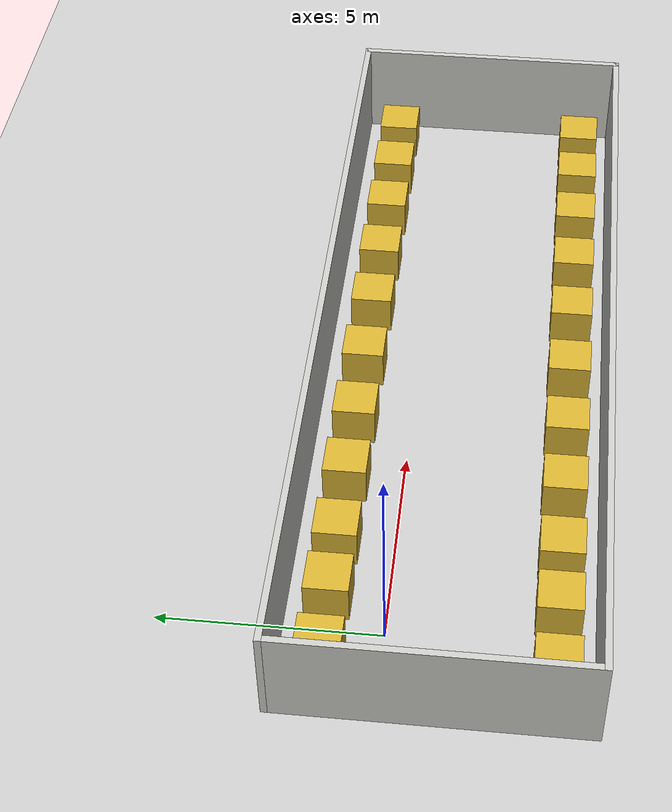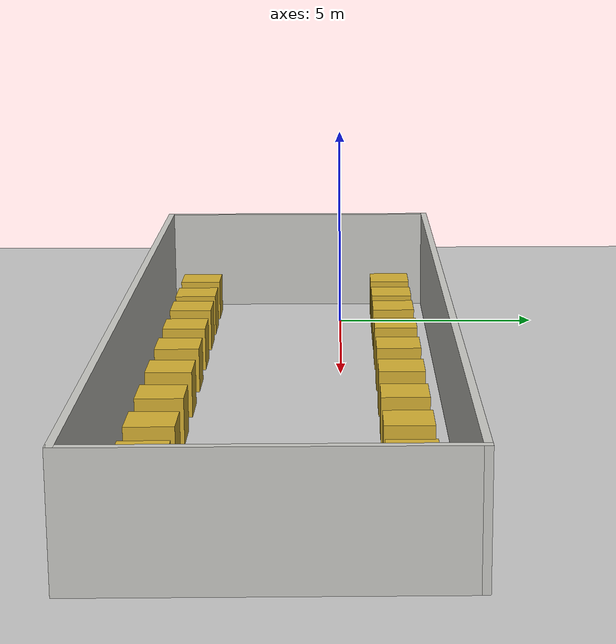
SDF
<sdf version="1.6">
 <world name="default">
  <light name="sun" type="directional">
   <pose>0 0 15 0 -0 0</pose>
   <diffuse>0.8 0.8 0.8 1</diffuse>
   <specular>0.2 0.2 0.2 1</specular>
   <attenuation>
    <range>1000</range>
    <constant>0.9</constant>
    <linear>0.01</linear>
    <quadratic>0.001</quadratic>
   </attenuation>
   <direction>-0.5 0.1 -0.9</direction>
  </light>
  <model name="ground_plane">
   <static>1</static>
   <link name="link">
    <collision name="collision">
     <geometry><plane><normal>0 0 1</normal><size>100 100</size></plane></geometry>
     <surface><friction><ode><mu>100</mu><mu2>50</mu2></ode></friction></surface>
    </collision>
    <visual name="visual">
     <cast_shadows>0</cast_shadows>
     <geometry><plane><normal>0 0 1</normal><size>100 100</size></plane></geometry>
     <material>
      <script><uri>file://media/materials/scripts/gazebo.material</uri><name>Gazebo/Grey</name></script>
     </material>
    </visual>
   </link>
  </model>
  <gravity>0 0 -9.8</gravity>
  <magnetic_field>6e-06 2.3e-05 -4.2e-05</magnetic_field>
  <atmosphere type="adiabatic"/>
  <physics name="default_physics" default="0" type="ode">
   <max_step_size>0.001</max_step_size>
   <real_time_factor>1</real_time_factor>
   <real_time_update_rate>1000</real_time_update_rate>
  </physics>
  <scene><ambient>0.4 0.4 0.4 1</ambient><background>0.7 0.7 0.7 1</background><shadows>1</shadows></scene>
  <audio><device>default</device></audio>
  <spherical_coordinates>
   <surface_model>EARTH_WGS84</surface_model>
   <latitude_deg>0</latitude_deg>
   <longitude_deg>0</longitude_deg>
   <elevation>0</elevation>
   <heading_deg>0</heading_deg>
  </spherical_coordinates>
  <model name="field_2">
   <link name="Wall_2">
    <pose>0 -3.425 0 0 -0 0</pose>
    <visual name="Wall_2_Visual">
     <pose>0 0 1.25 0 -0 0</pose>
     <geometry><box><size>20 0.15 2.5</size></box></geometry>
     <material>
      <script><uri>file://media/materials/scripts/gazebo.material</uri><name>Gazebo/CeilingTiled</name></script>
      <ambient>0.435294 0.796078 0.67451 1</ambient>
     </material>
     <meta><layer>0</layer></meta>
    </visual>
    <collision name="Wall_2_Collision">
     <pose>0 0 1.25 0 -0 0</pose>
     <geometry><box><size>20 0.15 2.5</size></box></geometry>
     <surface>
      <friction>
       <ode><mu>1</mu><mu2>1</mu2><fdir1>0 0 0</fdir1><slip1>0</slip1><slip2>0</slip2></ode>
       <torsional>
        <coefficient>1</coefficient>
        <patch_radius>0</patch_radius>
        <surface_radius>0</surface_radius>
        <use_patch_radius>1</use_patch_radius>
        <ode><slip>0</slip></ode>
       </torsional>
      </friction>
      <bounce><restitution_coefficient>0</restitution_coefficient><threshold>1e+06</threshold></bounce>
      <contact>
       <collide_without_contact>0</collide_without_contact>
       <collide_without_contact_bitmask>1</collide_without_contact_bitmask>
       <collide_bitmask>1</collide_bitmask>
       <ode>
        <soft_cfm>0</soft_cfm>
        <soft_erp>0.2</soft_erp>
        <kp>1e+13</kp>
        <kd>1</kd>
        <max_vel>0.01</max_vel>
        <min_depth>0</min_depth>
       </ode>
       <bullet>
        <split_impulse>1</split_impulse>
        <split_impulse_penetration_threshold>-0.01</split_impulse_penetration_threshold>
        <soft_cfm>0</soft_cfm>
        <soft_erp>0.2</soft_erp>
        <kp>1e+13</kp>
        <kd>1</kd>
       </bullet>
      </contact>
     </surface>
    </collision>
   </link>
   <link name="Wall_4">
    <pose>9.925 0 0 0 -0 1.5708</pose>
    <visual name="Wall_4_Visual">
     <pose>0 0 1.25 0 -0 0</pose>
     <geometry><box><size>7 0.15 2.5</size></box></geometry>
     <material>
      <script><uri>file://media/materials/scripts/gazebo.material</uri><name>Gazebo/CeilingTiled</name></script>
      <ambient>0.435294 0.796078 0.67451 1</ambient>
     </material>
     <meta><layer>0</layer></meta>
    </visual>
    <collision name="Wall_4_Collision">
     <pose>0 0 1.25 0 -0 0</pose>
     <geometry><box><size>7 0.15 2.5</size></box></geometry>
     <surface>
      <friction>
       <ode><mu>1</mu><mu2>1</mu2><fdir1>0 0 0</fdir1><slip1>0</slip1><slip2>0</slip2></ode>
       <torsional>
        <coefficient>1</coefficient>
        <patch_radius>0</patch_radius>
        <surface_radius>0</surface_radius>
        <use_patch_radius>1</use_patch_radius>
        <ode><slip>0</slip></ode>
       </torsional>
      </friction>
      <bounce><restitution_coefficient>0</restitution_coefficient><threshold>1e+06</threshold></bounce>
      <contact>
       <collide_without_contact>0</collide_without_contact>
       <collide_without_contact_bitmask>1</collide_without_contact_bitmask>
       <collide_bitmask>1</collide_bitmask>
       <ode>
        <soft_cfm>0</soft_cfm>
        <soft_erp>0.2</soft_erp>
        <kp>1e+13</kp>
        <kd>1</kd>
        <max_vel>0.01</max_vel>
        <min_depth>0</min_depth>
       </ode>
       <bullet>
        <split_impulse>1</split_impulse>
        <split_impulse_penetration_threshold>-0.01</split_impulse_penetration_threshold>
        <soft_cfm>0</soft_cfm>
        <soft_erp>0.2</soft_erp>
        <kp>1e+13</kp>
        <kd>1</kd>
       </bullet>
      </contact>
     </surface>
    </collision>
   </link>
   <link name="Wall_6">
    <pose>0 3.425 0 0 -0 3.14159</pose>
    <visual name="Wall_6_Visual">
     <pose>0 0 1.25 0 -0 0</pose>
     <geometry><box><size>20 0.15 2.5</size></box></geometry>
     <material>
      <script><uri>file://media/materials/scripts/gazebo.material</uri><name>Gazebo/CeilingTiled</name></script>
      <ambient>0.435294 0.796078 0.67451 1</ambient>
     </material>
     <meta><layer>0</layer></meta>
    </visual>
    <collision name="Wall_6_Collision">
     <pose>0 0 1.25 0 -0 0</pose>
     <geometry><box><size>20 0.15 2.5</size></box></geometry>
     <surface>
      <friction>
       <ode><mu>1</mu><mu2>1</mu2><fdir1>0 0 0</fdir1><slip1>0</slip1><slip2>0</slip2></ode>
       <torsional>
        <coefficient>1</coefficient>
        <patch_radius>0</patch_radius>
        <surface_radius>0</surface_radius>
        <use_patch_radius>1</use_patch_radius>
        <ode><slip>0</slip></ode>
       </torsional>
      </friction>
      <bounce><restitution_coefficient>0</restitution_coefficient><threshold>1e+06</threshold></bounce>
      <contact>
       <collide_without_contact>0</collide_without_contact>
       <collide_without_contact_bitmask>1</collide_without_contact_bitmask>
       <collide_bitmask>1</collide_bitmask>
       <ode>
        <soft_cfm>0</soft_cfm>
        <soft_erp>0.2</soft_erp>
        <kp>1e+13</kp>
        <kd>1</kd>
        <max_vel>0.01</max_vel>
        <min_depth>0</min_depth>
       </ode>
       <bullet>
        <split_impulse>1</split_impulse>
        <split_impulse_penetration_threshold>-0.01</split_impulse_penetration_threshold>
        <soft_cfm>0</soft_cfm>
        <soft_erp>0.2</soft_erp>
        <kp>1e+13</kp>
        <kd>1</kd>
       </bullet>
      </contact>
     </surface>
    </collision>
   </link>
   <link name="Wall_7">
    <pose>-9.925 0 0 0 0 -1.5708</pose>
    <visual name="Wall_7_Visual">
     <pose>0 0 1.25 0 -0 0</pose>
     <geometry><box><size>7 0.15 2.5</size></box></geometry>
     <material>
      <script><uri>file://media/materials/scripts/gazebo.material</uri><name>Gazebo/CeilingTiled</name></script>
      <ambient>0.435294 0.796078 0.67451 1</ambient>
     </material>
     <meta><layer>0</layer></meta>
    </visual>
    <collision name="Wall_7_Collision">
     <pose>0 0 1.25 0 -0 0</pose>
     <geometry><box><size>7 0.15 2.5</size></box></geometry>
     <surface>
      <friction>
       <ode><mu>1</mu><mu2>1</mu2><fdir1>0 0 0</fdir1><slip1>0</slip1><slip2>0</slip2></ode>
       <torsional>
        <coefficient>1</coefficient>
        <patch_radius>0</patch_radius>
        <surface_radius>0</surface_radius>
        <use_patch_radius>1</use_patch_radius>
        <ode><slip>0</slip></ode>
       </torsional>
      </friction>
      <bounce><restitution_coefficient>0</restitution_coefficient><threshold>1e+06</threshold></bounce>
      <contact>
       <collide_without_contact>0</collide_without_contact>
       <collide_without_contact_bitmask>1</collide_without_contact_bitmask>
       <collide_bitmask>1</collide_bitmask>
       <ode>
        <soft_cfm>0</soft_cfm>
        <soft_erp>0.2</soft_erp>
        <kp>1e+13</kp>
        <kd>1</kd>
        <max_vel>0.01</max_vel>
        <min_depth>0</min_depth>
       </ode>
       <bullet>
        <split_impulse>1</split_impulse>
        <split_impulse_penetration_threshold>-0.01</split_impulse_penetration_threshold>
        <soft_cfm>0</soft_cfm>
        <soft_erp>0.2</soft_erp>
        <kp>1e+13</kp>
        <kd>1</kd>
       </bullet>
      </contact>
     </surface>
    </collision>
   </link>
   <link name="link_0">
    <inertial>
     <mass>1</mass>
     <inertia>
      <ixx>0.166667</ixx>
      <ixy>0</ixy>
      <ixz>0</ixz>
      <iyy>0.166667</iyy>
      <iyz>0</iyz>
      <izz>0.166667</izz>
     </inertia>
    </inertial>
    <pose>-8.65517 -2.53983 0.5 0 -0 0</pose>
    <visual name="visual">
     <geometry><box><size>1 1 1</size></box></geometry>
     <material>
      <lighting>1</lighting>
      <script><uri>file://media/materials/scripts/gazebo.material</uri><name>Gazebo/Gold</name></script>
      <shader type="vertex"><normal_map>__default__</normal_map></shader>
      <ambient>0.2 0.7 0.2 1</ambient>
      <diffuse>0.7 0.7 0.7 1</diffuse>
      <specular>0.01 0.01 0.01 1</specular>
      <emissive>0 0 0 1</emissive>
     </material>
    </visual>
    <collision name="collision">
     <geometry><box><size>1 1 1</size></box></geometry>
     <surface>
      <friction>
       <ode><mu>1</mu><mu2>1</mu2><fdir1>0 0 0</fdir1><slip1>0</slip1><slip2>0</slip2></ode>
       <torsional>
        <coefficient>1</coefficient>
        <patch_radius>0</patch_radius>
        <surface_radius>0</surface_radius>
        <use_patch_radius>1</use_patch_radius>
        <ode><slip>0</slip></ode>
       </torsional>
      </friction>
      <bounce><restitution_coefficient>0</restitution_coefficient><threshold>1e+06</threshold></bounce>
      <contact>
       <collide_without_contact>0</collide_without_contact>
       <collide_without_contact_bitmask>1</collide_without_contact_bitmask>
       <collide_bitmask>1</collide_bitmask>
       <ode>
        <soft_cfm>0</soft_cfm>
        <soft_erp>0.2</soft_erp>
        <kp>1e+13</kp>
        <kd>1</kd>
        <max_vel>0.01</max_vel>
        <min_depth>0</min_depth>
       </ode>
       <bullet>
        <split_impulse>1</split_impulse>
        <split_impulse_penetration_threshold>-0.01</split_impulse_penetration_threshold>
        <soft_cfm>0</soft_cfm>
        <soft_erp>0.2</soft_erp>
        <kp>1e+13</kp>
        <kd>1</kd>
       </bullet>
      </contact>
     </surface>
    </collision>
   </link>
   <link name="link_0_clone">
    <inertial>
     <mass>1</mass>
     <inertia>
      <ixx>0.166667</ixx>
      <ixy>0</ixy>
      <ixz>0</ixz>
      <iyy>0.166667</iyy>
      <iyz>0</iyz>
      <izz>0.166667</izz>
     </inertia>
    </inertial>
    <pose>-7.02211 -2.53809 0.5 0 -0 0</pose>
    <visual name="visual">
     <geometry><box><size>1 1 1</size></box></geometry>
     <material>
      <lighting>1</lighting>
      <script><uri>file://media/materials/scripts/gazebo.material</uri><name>Gazebo/Gold</name></script>
      <shader type="vertex"><normal_map>__default__</normal_map></shader>
      <ambient>0.2 0.7 0.2 1</ambient>
      <diffuse>0.7 0.7 0.7 1</diffuse>
      <specular>0.01 0.01 0.01 1</specular>
      <emissive>0 0 0 1</emissive>
     </material>
    </visual>
    <collision name="collision">
     <geometry><box><size>1 1 1</size></box></geometry>
     <surface>
      <friction>
       <ode><mu>1</mu><mu2>1</mu2><fdir1>0 0 0</fdir1><slip1>0</slip1><slip2>0</slip2></ode>
       <torsional>
        <coefficient>1</coefficient>
        <patch_radius>0</patch_radius>
        <surface_radius>0</surface_radius>
        <use_patch_radius>1</use_patch_radius>
        <ode><slip>0</slip></ode>
       </torsional>
      </friction>
      <bounce><restitution_coefficient>0</restitution_coefficient><threshold>1e+06</threshold></bounce>
      <contact>
       <collide_without_contact>0</collide_without_contact>
       <collide_without_contact_bitmask>1</collide_without_contact_bitmask>
       <collide_bitmask>1</collide_bitmask>
       <ode>
        <soft_cfm>0</soft_cfm>
        <soft_erp>0.2</soft_erp>
        <kp>1e+13</kp>
        <kd>1</kd>
        <max_vel>0.01</max_vel>
        <min_depth>0</min_depth>
       </ode>
       <bullet>
        <split_impulse>1</split_impulse>
        <split_impulse_penetration_threshold>-0.01</split_impulse_penetration_threshold>
        <soft_cfm>0</soft_cfm>
        <soft_erp>0.2</soft_erp>
        <kp>1e+13</kp>
        <kd>1</kd>
       </bullet>
      </contact>
     </surface>
    </collision>
   </link>
   <link name="link_0_clone_0">
    <inertial>
     <mass>1</mass>
     <inertia>
      <ixx>0.166667</ixx>
      <ixy>0</ixy>
      <ixz>0</ixz>
      <iyy>0.166667</iyy>
      <iyz>0</iyz>
      <izz>0.166667</izz>
     </inertia>
    </inertial>
    <pose>-5.52194 -2.53983 0.5 0 -0 0</pose>
    <visual name="visual">
     <geometry><box><size>1 1 1</size></box></geometry>
     <material>
      <lighting>1</lighting>
      <script><uri>file://media/materials/scripts/gazebo.material</uri><name>Gazebo/Gold</name></script>
      <shader type="vertex"><normal_map>__default__</normal_map></shader>
      <ambient>0.2 0.7 0.2 1</ambient>
      <diffuse>0.7 0.7 0.7 1</diffuse>
      <specular>0.01 0.01 0.01 1</specular>
      <emissive>0 0 0 1</emissive>
     </material>
    </visual>
    <collision name="collision">
     <geometry><box><size>1 1 1</size></box></geometry>
     <surface>
      <friction>
       <ode><mu>1</mu><mu2>1</mu2><fdir1>0 0 0</fdir1><slip1>0</slip1><slip2>0</slip2></ode>
       <torsional>
        <coefficient>1</coefficient>
        <patch_radius>0</patch_radius>
        <surface_radius>0</surface_radius>
        <use_patch_radius>1</use_patch_radius>
        <ode><slip>0</slip></ode>
       </torsional>
      </friction>
      <bounce><restitution_coefficient>0</restitution_coefficient><threshold>1e+06</threshold></bounce>
      <contact>
       <collide_without_contact>0</collide_without_contact>
       <collide_without_contact_bitmask>1</collide_without_contact_bitmask>
       <collide_bitmask>1</collide_bitmask>
       <ode>
        <soft_cfm>0</soft_cfm>
        <soft_erp>0.2</soft_erp>
        <kp>1e+13</kp>
        <kd>1</kd>
        <max_vel>0.01</max_vel>
        <min_depth>0</min_depth>
       </ode>
       <bullet>
        <split_impulse>1</split_impulse>
        <split_impulse_penetration_threshold>-0.01</split_impulse_penetration_threshold>
        <soft_cfm>0</soft_cfm>
        <soft_erp>0.2</soft_erp>
        <kp>1e+13</kp>
        <kd>1</kd>
       </bullet>
      </contact>
     </surface>
    </collision>
   </link>
   <link name="link_0_clone_1">
    <inertial>
     <mass>1</mass>
     <inertia>
      <ixx>0.166667</ixx>
      <ixy>0</ixy>
      <ixz>0</ixz>
      <iyy>0.166667</iyy>
      <iyz>0</iyz>
      <izz>0.166667</izz>
     </inertia>
    </inertial>
    <pose>-3.7131 -2.53983 0.5 0 -0 0</pose>
    <visual name="visual">
     <geometry><box><size>1 1 1</size></box></geometry>
     <material>
      <lighting>1</lighting>
      <script><uri>file://media/materials/scripts/gazebo.material</uri><name>Gazebo/Gold</name></script>
      <shader type="vertex"><normal_map>__default__</normal_map></shader>
      <ambient>0.2 0.7 0.2 1</ambient>
      <diffuse>0.7 0.7 0.7 1</diffuse>
      <specular>0.01 0.01 0.01 1</specular>
      <emissive>0 0 0 1</emissive>
     </material>
    </visual>
    <collision name="collision">
     <geometry><box><size>1 1 1</size></box></geometry>
     <surface>
      <friction>
       <ode><mu>1</mu><mu2>1</mu2><fdir1>0 0 0</fdir1><slip1>0</slip1><slip2>0</slip2></ode>
       <torsional>
        <coefficient>1</coefficient>
        <patch_radius>0</patch_radius>
        <surface_radius>0</surface_radius>
        <use_patch_radius>1</use_patch_radius>
        <ode><slip>0</slip></ode>
       </torsional>
      </friction>
      <bounce><restitution_coefficient>0</restitution_coefficient><threshold>1e+06</threshold></bounce>
      <contact>
       <collide_without_contact>0</collide_without_contact>
       <collide_without_contact_bitmask>1</collide_without_contact_bitmask>
       <collide_bitmask>1</collide_bitmask>
       <ode>
        <soft_cfm>0</soft_cfm>
        <soft_erp>0.2</soft_erp>
        <kp>1e+13</kp>
        <kd>1</kd>
        <max_vel>0.01</max_vel>
        <min_depth>0</min_depth>
       </ode>
       <bullet>
        <split_impulse>1</split_impulse>
        <split_impulse_penetration_threshold>-0.01</split_impulse_penetration_threshold>
        <soft_cfm>0</soft_cfm>
        <soft_erp>0.2</soft_erp>
        <kp>1e+13</kp>
        <kd>1</kd>
       </bullet>
      </contact>
     </surface>
    </collision>
   </link>
   <link name="link_0_clone_2">
    <inertial>
     <mass>1</mass>
     <inertia>
      <ixx>0.166667</ixx>
      <ixy>0</ixy>
      <ixz>0</ixz>
      <iyy>0.166667</iyy>
      <iyz>0</iyz>
      <izz>0.166667</izz>
     </inertia>
    </inertial>
    <pose>-1.89482 -2.53983 0.5 0 -0 0</pose>
    <visual name="visual">
     <geometry><box><size>1 1 1</size></box></geometry>
     <material>
      <lighting>1</lighting>
      <script><uri>file://media/materials/scripts/gazebo.material</uri><name>Gazebo/Gold</name></script>
      <shader type="vertex"><normal_map>__default__</normal_map></shader>
      <ambient>0.2 0.7 0.2 1</ambient>
      <diffuse>0.7 0.7 0.7 1</diffuse>
      <specular>0.01 0.01 0.01 1</specular>
      <emissive>0 0 0 1</emissive>
     </material>
    </visual>
    <collision name="collision">
     <geometry><box><size>1 1 1</size></box></geometry>
     <surface>
      <friction>
       <ode><mu>1</mu><mu2>1</mu2><fdir1>0 0 0</fdir1><slip1>0</slip1><slip2>0</slip2></ode>
       <torsional>
        <coefficient>1</coefficient>
        <patch_radius>0</patch_radius>
        <surface_radius>0</surface_radius>
        <use_patch_radius>1</use_patch_radius>
        <ode><slip>0</slip></ode>
       </torsional>
      </friction>
      <bounce><restitution_coefficient>0</restitution_coefficient><threshold>1e+06</threshold></bounce>
      <contact>
       <collide_without_contact>0</collide_without_contact>
       <collide_without_contact_bitmask>1</collide_without_contact_bitmask>
       <collide_bitmask>1</collide_bitmask>
       <ode>
        <soft_cfm>0</soft_cfm>
        <soft_erp>0.2</soft_erp>
        <kp>1e+13</kp>
        <kd>1</kd>
        <max_vel>0.01</max_vel>
        <min_depth>0</min_depth>
       </ode>
       <bullet>
        <split_impulse>1</split_impulse>
        <split_impulse_penetration_threshold>-0.01</split_impulse_penetration_threshold>
        <soft_cfm>0</soft_cfm>
        <soft_erp>0.2</soft_erp>
        <kp>1e+13</kp>
        <kd>1</kd>
       </bullet>
      </contact>
     </surface>
    </collision>
   </link>
   <link name="link_0_clone_3">
    <inertial>
     <mass>1</mass>
     <inertia>
      <ixx>0.166667</ixx>
      <ixy>0</ixy>
      <ixz>0</ixz>
      <iyy>0.166667</iyy>
      <iyz>0</iyz>
      <izz>0.166667</izz>
     </inertia>
    </inertial>
    <pose>0.009398 -2.53983 0.5 0 -0 0</pose>
    <visual name="visual">
     <geometry><box><size>1 1 1</size></box></geometry>
     <material>
      <lighting>1</lighting>
      <script><uri>file://media/materials/scripts/gazebo.material</uri><name>Gazebo/Gold</name></script>
      <shader type="vertex"><normal_map>__default__</normal_map></shader>
      <ambient>0.2 0.7 0.2 1</ambient>
      <diffuse>0.7 0.7 0.7 1</diffuse>
      <specular>0.01 0.01 0.01 1</specular>
      <emissive>0 0 0 1</emissive>
     </material>
    </visual>
    <collision name="collision">
     <geometry><box><size>1 1 1</size></box></geometry>
     <surface>
      <friction>
       <ode><mu>1</mu><mu2>1</mu2><fdir1>0 0 0</fdir1><slip1>0</slip1><slip2>0</slip2></ode>
       <torsional>
        <coefficient>1</coefficient>
        <patch_radius>0</patch_radius>
        <surface_radius>0</surface_radius>
        <use_patch_radius>1</use_patch_radius>
        <ode><slip>0</slip></ode>
       </torsional>
      </friction>
      <bounce><restitution_coefficient>0</restitution_coefficient><threshold>1e+06</threshold></bounce>
      <contact>
       <collide_without_contact>0</collide_without_contact>
       <collide_without_contact_bitmask>1</collide_without_contact_bitmask>
       <collide_bitmask>1</collide_bitmask>
       <ode>
        <soft_cfm>0</soft_cfm>
        <soft_erp>0.2</soft_erp>
        <kp>1e+13</kp>
        <kd>1</kd>
        <max_vel>0.01</max_vel>
        <min_depth>0</min_depth>
       </ode>
       <bullet>
        <split_impulse>1</split_impulse>
        <split_impulse_penetration_threshold>-0.01</split_impulse_penetration_threshold>
        <soft_cfm>0</soft_cfm>
        <soft_erp>0.2</soft_erp>
        <kp>1e+13</kp>
        <kd>1</kd>
       </bullet>
      </contact>
     </surface>
    </collision>
   </link>
   <link name="link_0_clone_4">
    <inertial>
     <mass>1</mass>
     <inertia>
      <ixx>0.166667</ixx>
      <ixy>0</ixy>
      <ixz>0</ixz>
      <iyy>0.166667</iyy>
      <iyz>0</iyz>
      <izz>0.166667</izz>
     </inertia>
    </inertial>
    <pose>1.92601 -2.53983 0.5 0 -0 0</pose>
    <visual name="visual">
     <geometry><box><size>1 1 1</size></box></geometry>
     <material>
      <lighting>1</lighting>
      <script><uri>file://media/materials/scripts/gazebo.material</uri><name>Gazebo/Gold</name></script>
      <shader type="vertex"><normal_map>__default__</normal_map></shader>
      <ambient>0.2 0.7 0.2 1</ambient>
      <diffuse>0.7 0.7 0.7 1</diffuse>
      <specular>0.01 0.01 0.01 1</specular>
      <emissive>0 0 0 1</emissive>
     </material>
    </visual>
    <collision name="collision">
     <geometry><box><size>1 1 1</size></box></geometry>
     <surface>
      <friction>
       <ode><mu>1</mu><mu2>1</mu2><fdir1>0 0 0</fdir1><slip1>0</slip1><slip2>0</slip2></ode>
       <torsional>
        <coefficient>1</coefficient>
        <patch_radius>0</patch_radius>
        <surface_radius>0</surface_radius>
        <use_patch_radius>1</use_patch_radius>
        <ode><slip>0</slip></ode>
       </torsional>
      </friction>
      <bounce><restitution_coefficient>0</restitution_coefficient><threshold>1e+06</threshold></bounce>
      <contact>
       <collide_without_contact>0</collide_without_contact>
       <collide_without_contact_bitmask>1</collide_without_contact_bitmask>
       <collide_bitmask>1</collide_bitmask>
       <ode>
        <soft_cfm>0</soft_cfm>
        <soft_erp>0.2</soft_erp>
        <kp>1e+13</kp>
        <kd>1</kd>
        <max_vel>0.01</max_vel>
        <min_depth>0</min_depth>
       </ode>
       <bullet>
        <split_impulse>1</split_impulse>
        <split_impulse_penetration_threshold>-0.01</split_impulse_penetration_threshold>
        <soft_cfm>0</soft_cfm>
        <soft_erp>0.2</soft_erp>
        <kp>1e+13</kp>
        <kd>1</kd>
       </bullet>
      </contact>
     </surface>
    </collision>
   </link>
   <link name="link_0_clone_5">
    <inertial>
     <mass>1</mass>
     <inertia>
      <ixx>0.166667</ixx>
      <ixy>0</ixy>
      <ixz>0</ixz>
      <iyy>0.166667</iyy>
      <iyz>0</iyz>
      <izz>0.166667</izz>
     </inertia>
    </inertial>
    <pose>3.78591 -2.53983 0.5 0 -0 0</pose>
    <visual name="visual">
     <geometry><box><size>1 1 1</size></box></geometry>
     <material>
      <lighting>1</lighting>
      <script><uri>file://media/materials/scripts/gazebo.material</uri><name>Gazebo/Gold</name></script>
      <shader type="vertex"><normal_map>__default__</normal_map></shader>
      <ambient>0.2 0.7 0.2 1</ambient>
      <diffuse>0.7 0.7 0.7 1</diffuse>
      <specular>0.01 0.01 0.01 1</specular>
      <emissive>0 0 0 1</emissive>
     </material>
    </visual>
    <collision name="collision">
     <geometry><box><size>1 1 1</size></box></geometry>
     <surface>
      <friction>
       <ode><mu>1</mu><mu2>1</mu2><fdir1>0 0 0</fdir1><slip1>0</slip1><slip2>0</slip2></ode>
       <torsional>
        <coefficient>1</coefficient>
        <patch_radius>0</patch_radius>
        <surface_radius>0</surface_radius>
        <use_patch_radius>1</use_patch_radius>
        <ode><slip>0</slip></ode>
       </torsional>
      </friction>
      <bounce><restitution_coefficient>0</restitution_coefficient><threshold>1e+06</threshold></bounce>
      <contact>
       <collide_without_contact>0</collide_without_contact>
       <collide_without_contact_bitmask>1</collide_without_contact_bitmask>
       <collide_bitmask>1</collide_bitmask>
       <ode>
        <soft_cfm>0</soft_cfm>
        <soft_erp>0.2</soft_erp>
        <kp>1e+13</kp>
        <kd>1</kd>
        <max_vel>0.01</max_vel>
        <min_depth>0</min_depth>
       </ode>
       <bullet>
        <split_impulse>1</split_impulse>
        <split_impulse_penetration_threshold>-0.01</split_impulse_penetration_threshold>
        <soft_cfm>0</soft_cfm>
        <soft_erp>0.2</soft_erp>
        <kp>1e+13</kp>
        <kd>1</kd>
       </bullet>
      </contact>
     </surface>
    </collision>
   </link>
   <link name="link_0_clone_6">
    <inertial>
     <mass>1</mass>
     <inertia>
      <ixx>0.166667</ixx>
      <ixy>0</ixy>
      <ixz>0</ixz>
      <iyy>0.166667</iyy>
      <iyz>0</iyz>
      <izz>0.166667</izz>
     </inertia>
    </inertial>
    <pose>5.61245 -2.53983 0.5 0 -0 0</pose>
    <visual name="visual">
     <geometry><box><size>1 1 1</size></box></geometry>
     <material>
      <lighting>1</lighting>
      <script><uri>file://media/materials/scripts/gazebo.material</uri><name>Gazebo/Gold</name></script>
      <shader type="vertex"><normal_map>__default__</normal_map></shader>
      <ambient>0.2 0.7 0.2 1</ambient>
      <diffuse>0.7 0.7 0.7 1</diffuse>
      <specular>0.01 0.01 0.01 1</specular>
      <emissive>0 0 0 1</emissive>
     </material>
    </visual>
    <collision name="collision">
     <geometry><box><size>1 1 1</size></box></geometry>
     <surface>
      <friction>
       <ode><mu>1</mu><mu2>1</mu2><fdir1>0 0 0</fdir1><slip1>0</slip1><slip2>0</slip2></ode>
       <torsional>
        <coefficient>1</coefficient>
        <patch_radius>0</patch_radius>
        <surface_radius>0</surface_radius>
        <use_patch_radius>1</use_patch_radius>
        <ode><slip>0</slip></ode>
       </torsional>
      </friction>
      <bounce><restitution_coefficient>0</restitution_coefficient><threshold>1e+06</threshold></bounce>
      <contact>
       <collide_without_contact>0</collide_without_contact>
       <collide_without_contact_bitmask>1</collide_without_contact_bitmask>
       <collide_bitmask>1</collide_bitmask>
       <ode>
        <soft_cfm>0</soft_cfm>
        <soft_erp>0.2</soft_erp>
        <kp>1e+13</kp>
        <kd>1</kd>
        <max_vel>0.01</max_vel>
        <min_depth>0</min_depth>
       </ode>
       <bullet>
        <split_impulse>1</split_impulse>
        <split_impulse_penetration_threshold>-0.01</split_impulse_penetration_threshold>
        <soft_cfm>0</soft_cfm>
        <soft_erp>0.2</soft_erp>
        <kp>1e+13</kp>
        <kd>1</kd>
       </bullet>
      </contact>
     </surface>
    </collision>
   </link>
   <link name="link_0_clone_7">
    <inertial>
     <mass>1</mass>
     <inertia>
      <ixx>0.166667</ixx>
      <ixy>0</ixy>
      <ixz>0</ixz>
      <iyy>0.166667</iyy>
      <iyz>0</iyz>
      <izz>0.166667</izz>
     </inertia>
    </inertial>
    <pose>7.32526 -2.53983 0.5 0 -0 0</pose>
    <visual name="visual">
     <geometry><box><size>1 1 1</size></box></geometry>
     <material>
      <lighting>1</lighting>
      <script><uri>file://media/materials/scripts/gazebo.material</uri><name>Gazebo/Gold</name></script>
      <shader type="vertex"><normal_map>__default__</normal_map></shader>
      <ambient>0.2 0.7 0.2 1</ambient>
      <diffuse>0.7 0.7 0.7 1</diffuse>
      <specular>0.01 0.01 0.01 1</specular>
      <emissive>0 0 0 1</emissive>
     </material>
    </visual>
    <collision name="collision">
     <geometry><box><size>1 1 1</size></box></geometry>
     <surface>
      <friction>
       <ode><mu>1</mu><mu2>1</mu2><fdir1>0 0 0</fdir1><slip1>0</slip1><slip2>0</slip2></ode>
       <torsional>
        <coefficient>1</coefficient>
        <patch_radius>0</patch_radius>
        <surface_radius>0</surface_radius>
        <use_patch_radius>1</use_patch_radius>
        <ode><slip>0</slip></ode>
       </torsional>
      </friction>
      <bounce><restitution_coefficient>0</restitution_coefficient><threshold>1e+06</threshold></bounce>
      <contact>
       <collide_without_contact>0</collide_without_contact>
       <collide_without_contact_bitmask>1</collide_without_contact_bitmask>
       <collide_bitmask>1</collide_bitmask>
       <ode>
        <soft_cfm>0</soft_cfm>
        <soft_erp>0.2</soft_erp>
        <kp>1e+13</kp>
        <kd>1</kd>
        <max_vel>0.01</max_vel>
        <min_depth>0</min_depth>
       </ode>
       <bullet>
        <split_impulse>1</split_impulse>
        <split_impulse_penetration_threshold>-0.01</split_impulse_penetration_threshold>
        <soft_cfm>0</soft_cfm>
        <soft_erp>0.2</soft_erp>
        <kp>1e+13</kp>
        <kd>1</kd>
       </bullet>
      </contact>
     </surface>
    </collision>
   </link>
   <link name="link_0_clone_7_clone">
    <inertial>
     <mass>1</mass>
     <inertia>
      <ixx>0.166667</ixx>
      <ixy>0</ixy>
      <ixz>0</ixz>
      <iyy>0.166667</iyy>
      <iyz>0</iyz>
      <izz>0.166667</izz>
     </inertia>
    </inertial>
    <pose>8.94993 2.44676 0.5 0 -0 0</pose>
    <visual name="visual">
     <geometry><box><size>1 1 1</size></box></geometry>
     <material>
      <lighting>1</lighting>
      <script><uri>file://media/materials/scripts/gazebo.material</uri><name>Gazebo/Gold</name></script>
      <shader type="vertex"><normal_map>__default__</normal_map></shader>
      <ambient>0.2 0.7 0.2 1</ambient>
      <diffuse>0.7 0.7 0.7 1</diffuse>
      <specular>0.01 0.01 0.01 1</specular>
      <emissive>0 0 0 1</emissive>
     </material>
    </visual>
    <collision name="collision">
     <geometry><box><size>1 1 1</size></box></geometry>
     <surface>
      <friction>
       <ode><mu>1</mu><mu2>1</mu2><fdir1>0 0 0</fdir1><slip1>0</slip1><slip2>0</slip2></ode>
       <torsional>
        <coefficient>1</coefficient>
        <patch_radius>0</patch_radius>
        <surface_radius>0</surface_radius>
        <use_patch_radius>1</use_patch_radius>
        <ode><slip>0</slip></ode>
       </torsional>
      </friction>
      <bounce><restitution_coefficient>0</restitution_coefficient><threshold>1e+06</threshold></bounce>
      <contact>
       <collide_without_contact>0</collide_without_contact>
       <collide_without_contact_bitmask>1</collide_without_contact_bitmask>
       <collide_bitmask>1</collide_bitmask>
       <ode>
        <soft_cfm>0</soft_cfm>
        <soft_erp>0.2</soft_erp>
        <kp>1e+13</kp>
        <kd>1</kd>
        <max_vel>0.01</max_vel>
        <min_depth>0</min_depth>
       </ode>
       <bullet>
        <split_impulse>1</split_impulse>
        <split_impulse_penetration_threshold>-0.01</split_impulse_penetration_threshold>
        <soft_cfm>0</soft_cfm>
        <soft_erp>0.2</soft_erp>
        <kp>1e+13</kp>
        <kd>1</kd>
       </bullet>
      </contact>
     </surface>
    </collision>
   </link>
   <link name="link_0_clone_7_clone_0">
    <inertial>
     <mass>1</mass>
     <inertia>
      <ixx>0.166667</ixx>
      <ixy>0</ixy>
      <ixz>0</ixz>
      <iyy>0.166667</iyy>
      <iyz>0</iyz>
      <izz>0.166667</izz>
     </inertia>
    </inertial>
    <pose>7.32526 2.44676 0.5 0 -0 0</pose>
    <visual name="visual">
     <geometry><box><size>1 1 1</size></box></geometry>
     <material>
      <lighting>1</lighting>
      <script><uri>file://media/materials/scripts/gazebo.material</uri><name>Gazebo/Gold</name></script>
      <shader type="vertex"><normal_map>__default__</normal_map></shader>
      <ambient>0.2 0.7 0.2 1</ambient>
      <diffuse>0.7 0.7 0.7 1</diffuse>
      <specular>0.01 0.01 0.01 1</specular>
      <emissive>0 0 0 1</emissive>
     </material>
    </visual>
    <collision name="collision">
     <geometry><box><size>1 1 1</size></box></geometry>
     <surface>
      <friction>
       <ode><mu>1</mu><mu2>1</mu2><fdir1>0 0 0</fdir1><slip1>0</slip1><slip2>0</slip2></ode>
       <torsional>
        <coefficient>1</coefficient>
        <patch_radius>0</patch_radius>
        <surface_radius>0</surface_radius>
        <use_patch_radius>1</use_patch_radius>
        <ode><slip>0</slip></ode>
       </torsional>
      </friction>
      <bounce><restitution_coefficient>0</restitution_coefficient><threshold>1e+06</threshold></bounce>
      <contact>
       <collide_without_contact>0</collide_without_contact>
       <collide_without_contact_bitmask>1</collide_without_contact_bitmask>
       <collide_bitmask>1</collide_bitmask>
       <ode>
        <soft_cfm>0</soft_cfm>
        <soft_erp>0.2</soft_erp>
        <kp>1e+13</kp>
        <kd>1</kd>
        <max_vel>0.01</max_vel>
        <min_depth>0</min_depth>
       </ode>
       <bullet>
        <split_impulse>1</split_impulse>
        <split_impulse_penetration_threshold>-0.01</split_impulse_penetration_threshold>
        <soft_cfm>0</soft_cfm>
        <soft_erp>0.2</soft_erp>
        <kp>1e+13</kp>
        <kd>1</kd>
       </bullet>
      </contact>
     </surface>
    </collision>
   </link>
   <link name="link_0_clone_7_clone_1">
    <inertial>
     <mass>1</mass>
     <inertia>
      <ixx>0.166667</ixx>
      <ixy>0</ixy>
      <ixz>0</ixz>
      <iyy>0.166667</iyy>
      <iyz>0</iyz>
      <izz>0.166667</izz>
     </inertia>
    </inertial>
    <pose>5.61245 2.44676 0.5 0 -0 0</pose>
    <visual name="visual">
     <geometry><box><size>1 1 1</size></box></geometry>
     <material>
      <lighting>1</lighting>
      <script><uri>file://media/materials/scripts/gazebo.material</uri><name>Gazebo/Gold</name></script>
      <shader type="vertex"><normal_map>__default__</normal_map></shader>
      <ambient>0.2 0.7 0.2 1</ambient>
      <diffuse>0.7 0.7 0.7 1</diffuse>
      <specular>0.01 0.01 0.01 1</specular>
      <emissive>0 0 0 1</emissive>
     </material>
    </visual>
    <collision name="collision">
     <geometry><box><size>1 1 1</size></box></geometry>
     <surface>
      <friction>
       <ode><mu>1</mu><mu2>1</mu2><fdir1>0 0 0</fdir1><slip1>0</slip1><slip2>0</slip2></ode>
       <torsional>
        <coefficient>1</coefficient>
        <patch_radius>0</patch_radius>
        <surface_radius>0</surface_radius>
        <use_patch_radius>1</use_patch_radius>
        <ode><slip>0</slip></ode>
       </torsional>
      </friction>
      <bounce><restitution_coefficient>0</restitution_coefficient><threshold>1e+06</threshold></bounce>
      <contact>
       <collide_without_contact>0</collide_without_contact>
       <collide_without_contact_bitmask>1</collide_without_contact_bitmask>
       <collide_bitmask>1</collide_bitmask>
       <ode>
        <soft_cfm>0</soft_cfm>
        <soft_erp>0.2</soft_erp>
        <kp>1e+13</kp>
        <kd>1</kd>
        <max_vel>0.01</max_vel>
        <min_depth>0</min_depth>
       </ode>
       <bullet>
        <split_impulse>1</split_impulse>
        <split_impulse_penetration_threshold>-0.01</split_impulse_penetration_threshold>
        <soft_cfm>0</soft_cfm>
        <soft_erp>0.2</soft_erp>
        <kp>1e+13</kp>
        <kd>1</kd>
       </bullet>
      </contact>
     </surface>
    </collision>
   </link>
   <link name="link_0_clone_7_clone_2">
    <inertial>
     <mass>1</mass>
     <inertia>
      <ixx>0.166667</ixx>
      <ixy>0</ixy>
      <ixz>0</ixz>
      <iyy>0.166667</iyy>
      <iyz>0</iyz>
      <izz>0.166667</izz>
     </inertia>
    </inertial>
    <pose>3.78591 2.44676 0.5 0 -0 0</pose>
    <visual name="visual">
     <geometry><box><size>1 1 1</size></box></geometry>
     <material>
      <lighting>1</lighting>
      <script><uri>file://media/materials/scripts/gazebo.material</uri><name>Gazebo/Gold</name></script>
      <shader type="vertex"><normal_map>__default__</normal_map></shader>
      <ambient>0.2 0.7 0.2 1</ambient>
      <diffuse>0.7 0.7 0.7 1</diffuse>
      <specular>0.01 0.01 0.01 1</specular>
      <emissive>0 0 0 1</emissive>
     </material>
    </visual>
    <collision name="collision">
     <geometry><box><size>1 1 1</size></box></geometry>
     <surface>
      <friction>
       <ode><mu>1</mu><mu2>1</mu2><fdir1>0 0 0</fdir1><slip1>0</slip1><slip2>0</slip2></ode>
       <torsional>
        <coefficient>1</coefficient>
        <patch_radius>0</patch_radius>
        <surface_radius>0</surface_radius>
        <use_patch_radius>1</use_patch_radius>
        <ode><slip>0</slip></ode>
       </torsional>
      </friction>
      <bounce><restitution_coefficient>0</restitution_coefficient><threshold>1e+06</threshold></bounce>
      <contact>
       <collide_without_contact>0</collide_without_contact>
       <collide_without_contact_bitmask>1</collide_without_contact_bitmask>
       <collide_bitmask>1</collide_bitmask>
       <ode>
        <soft_cfm>0</soft_cfm>
        <soft_erp>0.2</soft_erp>
        <kp>1e+13</kp>
        <kd>1</kd>
        <max_vel>0.01</max_vel>
        <min_depth>0</min_depth>
       </ode>
       <bullet>
        <split_impulse>1</split_impulse>
        <split_impulse_penetration_threshold>-0.01</split_impulse_penetration_threshold>
        <soft_cfm>0</soft_cfm>
        <soft_erp>0.2</soft_erp>
        <kp>1e+13</kp>
        <kd>1</kd>
       </bullet>
      </contact>
     </surface>
    </collision>
   </link>
   <link name="link_0_clone_7_clone_3">
    <inertial>
     <mass>1</mass>
     <inertia>
      <ixx>0.166667</ixx>
      <ixy>0</ixy>
      <ixz>0</ixz>
      <iyy>0.166667</iyy>
      <iyz>0</iyz>
      <izz>0.166667</izz>
     </inertia>
    </inertial>
    <pose>1.92601 2.44676 0.5 0 -0 0</pose>
    <visual name="visual">
     <geometry><box><size>1 1 1</size></box></geometry>
     <material>
      <lighting>1</lighting>
      <script><uri>file://media/materials/scripts/gazebo.material</uri><name>Gazebo/Gold</name></script>
      <shader type="vertex"><normal_map>__default__</normal_map></shader>
      <ambient>0.2 0.7 0.2 1</ambient>
      <diffuse>0.7 0.7 0.7 1</diffuse>
      <specular>0.01 0.01 0.01 1</specular>
      <emissive>0 0 0 1</emissive>
     </material>
    </visual>
    <collision name="collision">
     <geometry><box><size>1 1 1</size></box></geometry>
     <surface>
      <friction>
       <ode><mu>1</mu><mu2>1</mu2><fdir1>0 0 0</fdir1><slip1>0</slip1><slip2>0</slip2></ode>
       <torsional>
        <coefficient>1</coefficient>
        <patch_radius>0</patch_radius>
        <surface_radius>0</surface_radius>
        <use_patch_radius>1</use_patch_radius>
        <ode><slip>0</slip></ode>
       </torsional>
      </friction>
      <bounce><restitution_coefficient>0</restitution_coefficient><threshold>1e+06</threshold></bounce>
      <contact>
       <collide_without_contact>0</collide_without_contact>
       <collide_without_contact_bitmask>1</collide_without_contact_bitmask>
       <collide_bitmask>1</collide_bitmask>
       <ode>
        <soft_cfm>0</soft_cfm>
        <soft_erp>0.2</soft_erp>
        <kp>1e+13</kp>
        <kd>1</kd>
        <max_vel>0.01</max_vel>
        <min_depth>0</min_depth>
       </ode>
       <bullet>
        <split_impulse>1</split_impulse>
        <split_impulse_penetration_threshold>-0.01</split_impulse_penetration_threshold>
        <soft_cfm>0</soft_cfm>
        <soft_erp>0.2</soft_erp>
        <kp>1e+13</kp>
        <kd>1</kd>
       </bullet>
      </contact>
     </surface>
    </collision>
   </link>
   <link name="link_0_clone_7_clone_4">
    <inertial>
     <mass>1</mass>
     <inertia>
      <ixx>0.166667</ixx>
      <ixy>0</ixy>
      <ixz>0</ixz>
      <iyy>0.166667</iyy>
      <iyz>0</iyz>
      <izz>0.166667</izz>
     </inertia>
    </inertial>
    <pose>0.009398 2.44676 0.5 0 -0 0</pose>
    <visual name="visual">
     <geometry><box><size>1 1 1</size></box></geometry>
     <material>
      <lighting>1</lighting>
      <script><uri>file://media/materials/scripts/gazebo.material</uri><name>Gazebo/Gold</name></script>
      <shader type="vertex"><normal_map>__default__</normal_map></shader>
      <ambient>0.2 0.7 0.2 1</ambient>
      <diffuse>0.7 0.7 0.7 1</diffuse>
      <specular>0.01 0.01 0.01 1</specular>
      <emissive>0 0 0 1</emissive>
     </material>
    </visual>
    <collision name="collision">
     <geometry><box><size>1 1 1</size></box></geometry>
     <surface>
      <friction>
       <ode><mu>1</mu><mu2>1</mu2><fdir1>0 0 0</fdir1><slip1>0</slip1><slip2>0</slip2></ode>
       <torsional>
        <coefficient>1</coefficient>
        <patch_radius>0</patch_radius>
        <surface_radius>0</surface_radius>
        <use_patch_radius>1</use_patch_radius>
        <ode><slip>0</slip></ode>
       </torsional>
      </friction>
      <bounce><restitution_coefficient>0</restitution_coefficient><threshold>1e+06</threshold></bounce>
      <contact>
       <collide_without_contact>0</collide_without_contact>
       <collide_without_contact_bitmask>1</collide_without_contact_bitmask>
       <collide_bitmask>1</collide_bitmask>
       <ode>
        <soft_cfm>0</soft_cfm>
        <soft_erp>0.2</soft_erp>
        <kp>1e+13</kp>
        <kd>1</kd>
        <max_vel>0.01</max_vel>
        <min_depth>0</min_depth>
       </ode>
       <bullet>
        <split_impulse>1</split_impulse>
        <split_impulse_penetration_threshold>-0.01</split_impulse_penetration_threshold>
        <soft_cfm>0</soft_cfm>
        <soft_erp>0.2</soft_erp>
        <kp>1e+13</kp>
        <kd>1</kd>
       </bullet>
      </contact>
     </surface>
    </collision>
   </link>
   <link name="link_0_clone_7_clone_5">
    <inertial>
     <mass>1</mass>
     <inertia>
      <ixx>0.166667</ixx>
      <ixy>0</ixy>
      <ixz>0</ixz>
      <iyy>0.166667</iyy>
      <iyz>0</iyz>
      <izz>0.166667</izz>
     </inertia>
    </inertial>
    <pose>-1.89482 2.44676 0.5 0 -0 0</pose>
    <visual name="visual">
     <geometry><box><size>1 1 1</size></box></geometry>
     <material>
      <lighting>1</lighting>
      <script><uri>file://media/materials/scripts/gazebo.material</uri><name>Gazebo/Gold</name></script>
      <shader type="vertex"><normal_map>__default__</normal_map></shader>
      <ambient>0.2 0.7 0.2 1</ambient>
      <diffuse>0.7 0.7 0.7 1</diffuse>
      <specular>0.01 0.01 0.01 1</specular>
      <emissive>0 0 0 1</emissive>
     </material>
    </visual>
    <collision name="collision">
     <geometry><box><size>1 1 1</size></box></geometry>
     <surface>
      <friction>
       <ode><mu>1</mu><mu2>1</mu2><fdir1>0 0 0</fdir1><slip1>0</slip1><slip2>0</slip2></ode>
       <torsional>
        <coefficient>1</coefficient>
        <patch_radius>0</patch_radius>
        <surface_radius>0</surface_radius>
        <use_patch_radius>1</use_patch_radius>
        <ode><slip>0</slip></ode>
       </torsional>
      </friction>
      <bounce><restitution_coefficient>0</restitution_coefficient><threshold>1e+06</threshold></bounce>
      <contact>
       <collide_without_contact>0</collide_without_contact>
       <collide_without_contact_bitmask>1</collide_without_contact_bitmask>
       <collide_bitmask>1</collide_bitmask>
       <ode>
        <soft_cfm>0</soft_cfm>
        <soft_erp>0.2</soft_erp>
        <kp>1e+13</kp>
        <kd>1</kd>
        <max_vel>0.01</max_vel>
        <min_depth>0</min_depth>
       </ode>
       <bullet>
        <split_impulse>1</split_impulse>
        <split_impulse_penetration_threshold>-0.01</split_impulse_penetration_threshold>
        <soft_cfm>0</soft_cfm>
        <soft_erp>0.2</soft_erp>
        <kp>1e+13</kp>
        <kd>1</kd>
       </bullet>
      </contact>
     </surface>
    </collision>
   </link>
   <link name="link_0_clone_7_clone_6">
    <inertial>
     <mass>1</mass>
     <inertia>
      <ixx>0.166667</ixx>
      <ixy>0</ixy>
      <ixz>0</ixz>
      <iyy>0.166667</iyy>
      <iyz>0</iyz>
      <izz>0.166667</izz>
     </inertia>
    </inertial>
    <pose>-3.7131 2.44676 0.5 0 -0 0</pose>
    <visual name="visual">
     <geometry><box><size>1 1 1</size></box></geometry>
     <material>
      <lighting>1</lighting>
      <script><uri>file://media/materials/scripts/gazebo.material</uri><name>Gazebo/Gold</name></script>
      <shader type="vertex"><normal_map>__default__</normal_map></shader>
      <ambient>0.2 0.7 0.2 1</ambient>
      <diffuse>0.7 0.7 0.7 1</diffuse>
      <specular>0.01 0.01 0.01 1</specular>
      <emissive>0 0 0 1</emissive>
     </material>
    </visual>
    <collision name="collision">
     <geometry><box><size>1 1 1</size></box></geometry>
     <surface>
      <friction>
       <ode><mu>1</mu><mu2>1</mu2><fdir1>0 0 0</fdir1><slip1>0</slip1><slip2>0</slip2></ode>
       <torsional>
        <coefficient>1</coefficient>
        <patch_radius>0</patch_radius>
        <surface_radius>0</surface_radius>
        <use_patch_radius>1</use_patch_radius>
        <ode><slip>0</slip></ode>
       </torsional>
      </friction>
      <bounce><restitution_coefficient>0</restitution_coefficient><threshold>1e+06</threshold></bounce>
      <contact>
       <collide_without_contact>0</collide_without_contact>
       <collide_without_contact_bitmask>1</collide_without_contact_bitmask>
       <collide_bitmask>1</collide_bitmask>
       <ode>
        <soft_cfm>0</soft_cfm>
        <soft_erp>0.2</soft_erp>
        <kp>1e+13</kp>
        <kd>1</kd>
        <max_vel>0.01</max_vel>
        <min_depth>0</min_depth>
       </ode>
       <bullet>
        <split_impulse>1</split_impulse>
        <split_impulse_penetration_threshold>-0.01</split_impulse_penetration_threshold>
        <soft_cfm>0</soft_cfm>
        <soft_erp>0.2</soft_erp>
        <kp>1e+13</kp>
        <kd>1</kd>
       </bullet>
      </contact>
     </surface>
    </collision>
   </link>
   <link name="link_0_clone_7_clone_7">
    <inertial>
     <mass>1</mass>
     <inertia>
      <ixx>0.166667</ixx>
      <ixy>0</ixy>
      <ixz>0</ixz>
      <iyy>0.166667</iyy>
      <iyz>0</iyz>
      <izz>0.166667</izz>
     </inertia>
    </inertial>
    <pose>-5.52194 2.44676 0.5 0 -0 0</pose>
    <visual name="visual">
     <geometry><box><size>1 1 1</size></box></geometry>
     <material>
      <lighting>1</lighting>
      <script><uri>file://media/materials/scripts/gazebo.material</uri><name>Gazebo/Gold</name></script>
      <shader type="vertex"><normal_map>__default__</normal_map></shader>
      <ambient>0.2 0.7 0.2 1</ambient>
      <diffuse>0.7 0.7 0.7 1</diffuse>
      <specular>0.01 0.01 0.01 1</specular>
      <emissive>0 0 0 1</emissive>
     </material>
    </visual>
    <collision name="collision">
     <geometry><box><size>1 1 1</size></box></geometry>
     <surface>
      <friction>
       <ode><mu>1</mu><mu2>1</mu2><fdir1>0 0 0</fdir1><slip1>0</slip1><slip2>0</slip2></ode>
       <torsional>
        <coefficient>1</coefficient>
        <patch_radius>0</patch_radius>
        <surface_radius>0</surface_radius>
        <use_patch_radius>1</use_patch_radius>
        <ode><slip>0</slip></ode>
       </torsional>
      </friction>
      <bounce><restitution_coefficient>0</restitution_coefficient><threshold>1e+06</threshold></bounce>
      <contact>
       <collide_without_contact>0</collide_without_contact>
       <collide_without_contact_bitmask>1</collide_without_contact_bitmask>
       <collide_bitmask>1</collide_bitmask>
       <ode>
        <soft_cfm>0</soft_cfm>
        <soft_erp>0.2</soft_erp>
        <kp>1e+13</kp>
        <kd>1</kd>
        <max_vel>0.01</max_vel>
        <min_depth>0</min_depth>
       </ode>
       <bullet>
        <split_impulse>1</split_impulse>
        <split_impulse_penetration_threshold>-0.01</split_impulse_penetration_threshold>
        <soft_cfm>0</soft_cfm>
        <soft_erp>0.2</soft_erp>
        <kp>1e+13</kp>
        <kd>1</kd>
       </bullet>
      </contact>
     </surface>
    </collision>
   </link>
   <link name="link_0_clone_7_clone_8">
    <inertial>
     <mass>1</mass>
     <inertia>
      <ixx>0.166667</ixx>
      <ixy>0</ixy>
      <ixz>0</ixz>
      <iyy>0.166667</iyy>
      <iyz>0</iyz>
      <izz>0.166667</izz>
     </inertia>
    </inertial>
    <pose>-8.65517 2.44676 0.5 0 -0 0</pose>
    <visual name="visual">
     <geometry><box><size>1 1 1</size></box></geometry>
     <material>
      <lighting>1</lighting>
      <script><uri>file://media/materials/scripts/gazebo.material</uri><name>Gazebo/Gold</name></script>
      <shader type="vertex"><normal_map>__default__</normal_map></shader>
      <ambient>0.2 0.7 0.2 1</ambient>
      <diffuse>0.7 0.7 0.7 1</diffuse>
      <specular>0.01 0.01 0.01 1</specular>
      <emissive>0 0 0 1</emissive>
     </material>
    </visual>
    <collision name="collision">
     <geometry><box><size>1 1 1</size></box></geometry>
     <surface>
      <friction>
       <ode><mu>1</mu><mu2>1</mu2><fdir1>0 0 0</fdir1><slip1>0</slip1><slip2>0</slip2></ode>
       <torsional>
        <coefficient>1</coefficient>
        <patch_radius>0</patch_radius>
        <surface_radius>0</surface_radius>
        <use_patch_radius>1</use_patch_radius>
        <ode><slip>0</slip></ode>
       </torsional>
      </friction>
      <bounce><restitution_coefficient>0</restitution_coefficient><threshold>1e+06</threshold></bounce>
      <contact>
       <collide_without_contact>0</collide_without_contact>
       <collide_without_contact_bitmask>1</collide_without_contact_bitmask>
       <collide_bitmask>1</collide_bitmask>
       <ode>
        <soft_cfm>0</soft_cfm>
        <soft_erp>0.2</soft_erp>
        <kp>1e+13</kp>
        <kd>1</kd>
        <max_vel>0.01</max_vel>
        <min_depth>0</min_depth>
       </ode>
       <bullet>
        <split_impulse>1</split_impulse>
        <split_impulse_penetration_threshold>-0.01</split_impulse_penetration_threshold>
        <soft_cfm>0</soft_cfm>
        <soft_erp>0.2</soft_erp>
        <kp>1e+13</kp>
        <kd>1</kd>
       </bullet>
      </contact>
     </surface>
    </collision>
   </link>
   <link name="link_0_clone_7_clone_9">
    <inertial>
     <mass>1</mass>
     <inertia>
      <ixx>0.166667</ixx>
      <ixy>0</ixy>
      <ixz>0</ixz>
      <iyy>0.166667</iyy>
      <iyz>0</iyz>
      <izz>0.166667</izz>
     </inertia>
    </inertial>
    <pose>-7.02211 2.44676 0.5 0 -0 0</pose>
    <visual name="visual">
     <geometry><box><size>1 1 1</size></box></geometry>
     <material>
      <lighting>1</lighting>
      <script><uri>file://media/materials/scripts/gazebo.material</uri><name>Gazebo/Gold</name></script>
      <shader type="vertex"><normal_map>__default__</normal_map></shader>
      <ambient>0.2 0.7 0.2 1</ambient>
      <diffuse>0.7 0.7 0.7 1</diffuse>
      <specular>0.01 0.01 0.01 1</specular>
      <emissive>0 0 0 1</emissive>
     </material>
    </visual>
    <collision name="collision">
     <geometry><box><size>1 1 1</size></box></geometry>
     <surface>
      <friction>
       <ode><mu>1</mu><mu2>1</mu2><fdir1>0 0 0</fdir1><slip1>0</slip1><slip2>0</slip2></ode>
       <torsional>
        <coefficient>1</coefficient>
        <patch_radius>0</patch_radius>
        <surface_radius>0</surface_radius>
        <use_patch_radius>1</use_patch_radius>
        <ode><slip>0</slip></ode>
       </torsional>
      </friction>
      <bounce><restitution_coefficient>0</restitution_coefficient><threshold>1e+06</threshold></bounce>
      <contact>
       <collide_without_contact>0</collide_without_contact>
       <collide_without_contact_bitmask>1</collide_without_contact_bitmask>
       <collide_bitmask>1</collide_bitmask>
       <ode>
        <soft_cfm>0</soft_cfm>
        <soft_erp>0.2</soft_erp>
        <kp>1e+13</kp>
        <kd>1</kd>
        <max_vel>0.01</max_vel>
        <min_depth>0</min_depth>
       </ode>
       <bullet>
        <split_impulse>1</split_impulse>
        <split_impulse_penetration_threshold>-0.01</split_impulse_penetration_threshold>
        <soft_cfm>0</soft_cfm>
        <soft_erp>0.2</soft_erp>
        <kp>1e+13</kp>
        <kd>1</kd>
       </bullet>
      </contact>
     </surface>
    </collision>
   </link>
   <link name="link_0_clone_8">
    <inertial>
     <mass>1</mass>
     <inertia>
      <ixx>0.166667</ixx>
      <ixy>0</ixy>
      <ixz>0</ixz>
      <iyy>0.166667</iyy>
      <iyz>0</iyz>
      <izz>0.166667</izz>
     </inertia>
    </inertial>
    <pose>8.94993 -2.53983 0.5 0 -0 0</pose>
    <visual name="visual">
     <geometry><box><size>1 1 1</size></box></geometry>
     <material>
      <lighting>1</lighting>
      <script><uri>file://media/materials/scripts/gazebo.material</uri><name>Gazebo/Gold</name></script>
      <shader type="vertex"><normal_map>__default__</normal_map></shader>
      <ambient>0.2 0.7 0.2 1</ambient>
      <diffuse>0.7 0.7 0.7 1</diffuse>
      <specular>0.01 0.01 0.01 1</specular>
      <emissive>0 0 0 1</emissive>
     </material>
    </visual>
    <collision name="collision">
     <geometry><box><size>1 1 1</size></box></geometry>
     <surface>
      <friction>
       <ode><mu>1</mu><mu2>1</mu2><fdir1>0 0 0</fdir1><slip1>0</slip1><slip2>0</slip2></ode>
       <torsional>
        <coefficient>1</coefficient>
        <patch_radius>0</patch_radius>
        <surface_radius>0</surface_radius>
        <use_patch_radius>1</use_patch_radius>
        <ode><slip>0</slip></ode>
       </torsional>
      </friction>
      <bounce><restitution_coefficient>0</restitution_coefficient><threshold>1e+06</threshold></bounce>
      <contact>
       <collide_without_contact>0</collide_without_contact>
       <collide_without_contact_bitmask>1</collide_without_contact_bitmask>
       <collide_bitmask>1</collide_bitmask>
       <ode>
        <soft_cfm>0</soft_cfm>
        <soft_erp>0.2</soft_erp>
        <kp>1e+13</kp>
        <kd>1</kd>
        <max_vel>0.01</max_vel>
        <min_depth>0</min_depth>
       </ode>
       <bullet>
        <split_impulse>1</split_impulse>
        <split_impulse_penetration_threshold>-0.01</split_impulse_penetration_threshold>
        <soft_cfm>0</soft_cfm>
        <soft_erp>0.2</soft_erp>
        <kp>1e+13</kp>
        <kd>1</kd>
       </bullet>
      </contact>
     </surface>
    </collision>
   </link>
   <static>1</static>
   <pose>7.88429 -1.13905 0 0 -0 0</pose>
  </model>
 </world>
</sdf>
